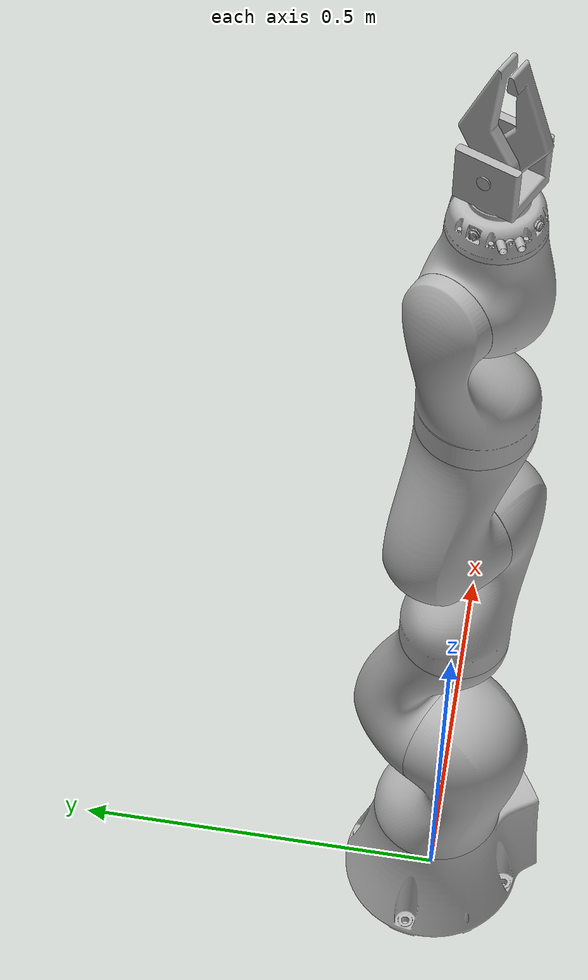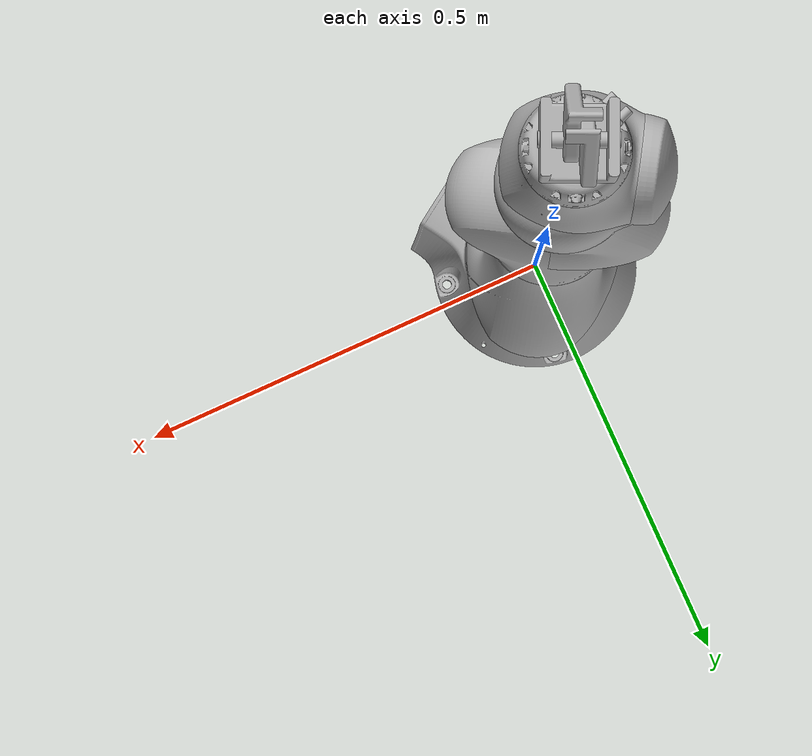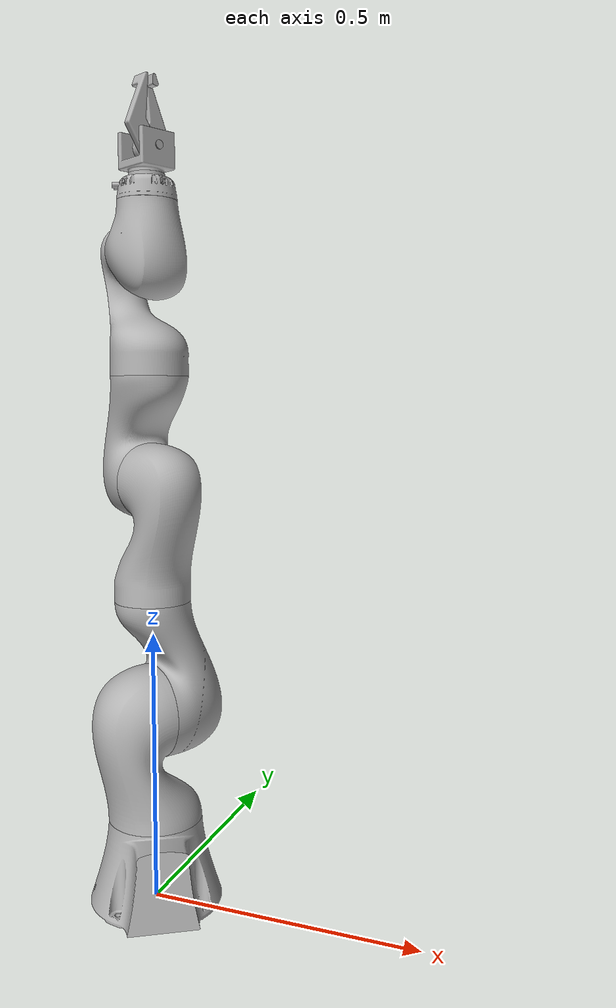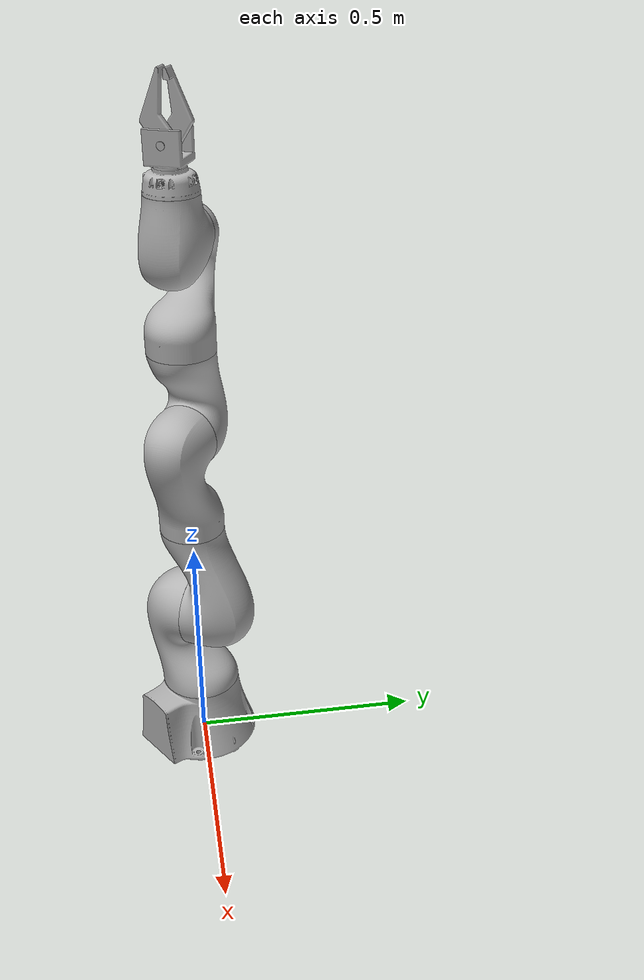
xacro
<?xml version="1.0" ?>
<robot name="iiwa_with_gripper" xmlns:xacro="http://www.ros.org/wiki/xacro">

  <xacro:include filename="$(find iiwa_with_gripper_description)/urdf/materials.xacro" />
  <xacro:include filename="$(find iiwa_with_gripper_description)/urdf/iiwa_with_gripper.trans" />
  <xacro:include filename="$(find iiwa_with_gripper_description)/urdf/iiwa_with_gripper.gazebo" />
  <link name="base_link">
    <inertial>
      <origin xyz="0.006965322374704147 -0.010760554559419669 0.06950676619175733" rpy="0 0 0"/>
      <mass value="5.476316363546272"/>
      <inertia ixx="0.02889" iyy="0.026199" izz="0.03348" ixy="0.003002" iyz="0.000568" ixz="-0.000368"/>
    </inertial>
    <visual>
      <origin xyz="0 0 0" rpy="0 0 0"/>
      <geometry>
        <mesh filename="package://iiwa_with_gripper_description/meshes/base_link.stl" scale="0.001 0.001 0.001"/>
      </geometry>
      <material name="silver"/>
    </visual>
    <collision>
      <origin xyz="0 0 0" rpy="0 0 0"/>
      <geometry>
        <mesh filename="package://iiwa_with_gripper_description/meshes/base_link.stl" scale="0.001 0.001 0.001"/>
      </geometry>
    </collision>
  </link>

  <link name="link1_1">
    <inertial>
      <origin xyz="-0.017943018054847274 -0.028638803355450302 0.1324037509841229" rpy="0 0 0"/>
      <mass value="4.1085979543107625"/>
      <inertia ixx="0.033064" iyy="0.033192" izz="0.012327" ixy="0.000132" iyz="0.004174" ixz="0.002615"/>
    </inertial>
    <visual>
      <origin xyz="5e-06 -1e-06 -0.1455" rpy="0 0 0"/>
      <geometry>
        <mesh filename="package://iiwa_with_gripper_description/meshes/link1_1.stl" scale="0.001 0.001 0.001"/>
      </geometry>
      <material name="silver"/>
    </visual>
    <collision>
      <origin xyz="5e-06 -1e-06 -0.1455" rpy="0 0 0"/>
      <geometry>
        <mesh filename="package://iiwa_with_gripper_description/meshes/link1_1.stl" scale="0.001 0.001 0.001"/>
      </geometry>
    </collision>
  </link>

  <link name="link2_1">
    <inertial>
      <origin xyz="0.027730554612854612 0.04397318850973551 0.05880227691865292" rpy="0 0 0"/>
      <mass value="3.9516031301561854"/>
      <inertia ixx="0.030525" iyy="0.030489" izz="0.011018" ixy="-8.9e-05" iyz="0.004124" ixz="0.002623"/>
    </inertial>
    <visual>
      <origin xyz="0.005314 0.008473 -0.358" rpy="0 0 0"/>
      <geometry>
        <mesh filename="package://iiwa_with_gripper_description/meshes/link2_1.stl" scale="0.001 0.001 0.001"/>
      </geometry>
      <material name="silver"/>
    </visual>
    <collision>
      <origin xyz="0.005314 0.008473 -0.358" rpy="0 0 0"/>
      <geometry>
        <mesh filename="package://iiwa_with_gripper_description/meshes/link2_1.stl" scale="0.001 0.001 0.001"/>
      </geometry>
    </collision>
  </link>

  <link name="link3_1">
    <inertial>
      <origin xyz="0.025051478850338406 -0.015696019116518925 0.13649751267814747" rpy="0 0 0"/>
      <mass value="3.1751522797798235"/>
      <inertia ixx="0.024168" iyy="0.024723" izz="0.007609" ixy="0.000572" iyz="0.002588" ixz="-0.00413"/>
    </inertial>
    <visual>
      <origin xyz="5e-06 -1e-06 -0.5525" rpy="0 0 0"/>
      <geometry>
        <mesh filename="package://iiwa_with_gripper_description/meshes/link3_1.stl" scale="0.001 0.001 0.001"/>
      </geometry>
      <material name="silver"/>
    </visual>
    <collision>
      <origin xyz="5e-06 -1e-06 -0.5525" rpy="0 0 0"/>
      <geometry>
        <mesh filename="package://iiwa_with_gripper_description/meshes/link3_1.stl" scale="0.001 0.001 0.001"/>
      </geometry>
    </collision>
  </link>

  <link name="link4_1">
    <inertial>
      <origin xyz="-0.03793408371324007 0.02376733466078998 0.0674187772182614" rpy="0 0 0"/>
      <mass value="2.7394199863147835"/>
      <inertia ixx="0.016623" iyy="0.016976" izz="0.006138" ixy="0.000364" iyz="0.001512" ixz="-0.002413"/>
    </inertial>
    <visual>
      <origin xyz="-0.008893 0.005574 -0.778" rpy="0 0 0"/>
      <geometry>
        <mesh filename="package://iiwa_with_gripper_description/meshes/link4_1.stl" scale="0.001 0.001 0.001"/>
      </geometry>
      <material name="silver"/>
    </visual>
    <collision>
      <origin xyz="-0.008893 0.005574 -0.778" rpy="0 0 0"/>
      <geometry>
        <mesh filename="package://iiwa_with_gripper_description/meshes/link4_1.stl" scale="0.001 0.001 0.001"/>
      </geometry>
    </collision>
  </link>

  <link name="link5_1">
    <inertial>
      <origin xyz="-0.018059916116281608 0.01145722636903425 0.08546976144259932" rpy="0 0 0"/>
      <mass value="1.6937518930824942"/>
      <inertia ixx="0.00909" iyy="0.009693" izz="0.004469" ixy="0.000619" iyz="-0.00164" ixz="0.002619"/>
    </inertial>
    <visual>
      <origin xyz="5e-06 -1e-06 -0.9525" rpy="0 0 0"/>
      <geometry>
        <mesh filename="package://iiwa_with_gripper_description/meshes/link5_1.stl" scale="0.001 0.001 0.001"/>
      </geometry>
      <material name="silver"/>
    </visual>
    <collision>
      <origin xyz="5e-06 -1e-06 -0.9525" rpy="0 0 0"/>
      <geometry>
        <mesh filename="package://iiwa_with_gripper_description/meshes/link5_1.stl" scale="0.001 0.001 0.001"/>
      </geometry>
    </collision>
  </link>

  <link name="link6_1">
    <inertial>
      <origin xyz="0.060197961567838416 -0.03771691538484422 0.0005655510153361742" rpy="0 0 0"/>
      <mass value="1.8087048119470246"/>
      <inertia ixx="0.004745" iyy="0.004836" izz="0.003567" ixy="9.4e-05" iyz="-0.00013" ixz="0.000207"/>
    </inertial>
    <visual>
      <origin xyz="0.059916 -0.037538 -1.178" rpy="0 0 0"/>
      <geometry>
        <mesh filename="package://iiwa_with_gripper_description/meshes/link6_1.stl" scale="0.001 0.001 0.001"/>
      </geometry>
      <material name="silver"/>
    </visual>
    <collision>
      <origin xyz="0.059916 -0.037538 -1.178" rpy="0 0 0"/>
      <geometry>
        <mesh filename="package://iiwa_with_gripper_description/meshes/link6_1.stl" scale="0.001 0.001 0.001"/>
      </geometry>
    </collision>
  </link>

  <link name="link7_1">
    <inertial>
      <origin xyz="-8.566076938427869e-05 -1.6648615005243726e-05 0.02726331885121902" rpy="0 0 0"/>
      <mass value="0.3112293546238468"/>
      <inertia ixx="0.000222" iyy="0.000223" izz="0.000342" ixy="-1e-06" iyz="0.0" ixz="0.0"/>
    </inertial>
    <visual>
      <origin xyz="5e-06 -1e-06 -1.2491" rpy="0 0 0"/>
      <geometry>
        <mesh filename="package://iiwa_with_gripper_description/meshes/link7_1.stl" scale="0.001 0.001 0.001"/>
      </geometry>
      <material name="silver"/>
    </visual>
    <collision>
      <origin xyz="5e-06 -1e-06 -1.2491" rpy="0 0 0"/>
      <geometry>
        <mesh filename="package://iiwa_with_gripper_description/meshes/link7_1.stl" scale="0.001 0.001 0.001"/>
      </geometry>
    </collision>
  </link>

  <link name="gripper_base_1">
    <inertial>
      <origin xyz="3.696945411962817e-07 -2.838668831751647e-07 0.025340357617523068" rpy="0 0 0"/>
      <mass value="0.14502326695982184"/>
      <inertia ixx="0.000113" iyy="0.000133" izz="0.000146" ixy="1.1e-05" iyz="-0.0" ixz="-0.0"/>
    </inertial>
    <visual>
      <origin xyz="5e-06 -1e-06 -1.304" rpy="0 0 0"/>
      <geometry>
        <mesh filename="package://iiwa_with_gripper_description/meshes/gripper_base_1.stl" scale="0.001 0.001 0.001"/>
      </geometry>
      <material name="silver"/>
    </visual>
    <collision>
      <origin xyz="5e-06 -1e-06 -1.304" rpy="0 0 0"/>
      <geometry>
        <mesh filename="package://iiwa_with_gripper_description/meshes/gripper_base_1.stl" scale="0.001 0.001 0.001"/>
      </geometry>
    </collision>
  </link>

  <link name="gripper_axis_1">
    <inertial>
      <origin xyz="-0.24653063030548122 -0.10569728386693174 -3.943512183468556e-13" rpy="0 0 0"/>
      <mass value="0.013076879420567428"/>
      <inertia ixx="1e-06" iyy="5e-06" izz="6e-06" ixy="2e-06" iyz="-0.0" ixz="-0.0"/>
    </inertial>
    <visual>
      <origin xyz="-0.246526 -0.105698 -1.346" rpy="0 0 0"/>
      <geometry>
        <mesh filename="package://iiwa_with_gripper_description/meshes/gripper_axis_1.stl" scale="0.001 0.001 0.001"/>
      </geometry>
      <material name="silver"/>
    </visual>
    <collision>
      <origin xyz="-0.246526 -0.105698 -1.346" rpy="0 0 0"/>
      <geometry>
        <mesh filename="package://iiwa_with_gripper_description/meshes/gripper_axis_1.stl" scale="0.001 0.001 0.001"/>
      </geometry>
    </collision>
  </link>

  <link name="gripper_finger1_1">
    <inertial>
      <origin xyz="-7.522186935857434e-05 -0.015319651825661716 0.04015659424597029" rpy="0 0 0"/>
      <mass value="0.056756377676662674"/>
      <inertia ixx="8.2e-05" iyy="7.6e-05" izz="1.2e-05" ixy="-3e-06" iyz="5e-06" ixz="5e-06"/>
    </inertial>
    <visual>
      <origin xyz="5e-06 -1e-06 -1.346" rpy="0 0 0"/>
      <geometry>
        <mesh filename="package://iiwa_with_gripper_description/meshes/gripper_finger1_1.stl" scale="0.001 0.001 0.001"/>
      </geometry>
      <material name="silver"/>
    </visual>
    <collision>
      <origin xyz="5e-06 -1e-06 -1.346" rpy="0 0 0"/>
      <geometry>
        <mesh filename="package://iiwa_with_gripper_description/meshes/gripper_finger1_1.stl" scale="0.001 0.001 0.001"/>
      </geometry>
    </collision>
  </link>

  <link name="grippe_finger2_1">
    <inertial>
      <origin xyz="-5.6963165186682546e-05 0.015028330719705208 0.040266373725741156" rpy="0 0 0"/>
      <mass value="0.0567564113627171"/>
      <inertia ixx="8.2e-05" iyy="7.6e-05" izz="1.1e-05" ixy="-3e-06" iyz="-4e-06" ixz="-5e-06"/>
    </inertial>
    <visual>
      <origin xyz="5e-06 -1e-06 -1.346" rpy="0 0 0"/>
      <geometry>
        <mesh filename="package://iiwa_with_gripper_description/meshes/grippe_finger2_1.stl" scale="0.001 0.001 0.001"/>
      </geometry>
      <material name="silver"/>
    </visual>
    <collision>
      <origin xyz="5e-06 -1e-06 -1.346" rpy="0 0 0"/>
      <geometry>
        <mesh filename="package://iiwa_with_gripper_description/meshes/grippe_finger2_1.stl" scale="0.001 0.001 0.001"/>
      </geometry>
    </collision>
  </link>

  <joint name="revolute1" type="continuous">
    <origin xyz="-5e-06 1e-06 0.1455" rpy="0 0 0"/>
    <parent link="base_link"/>
    <child link="link1_1"/>
    <axis xyz="0.0 0.0 1.0"/>
  </joint>

  <joint name="revolute2" type="continuous">
    <origin xyz="-0.005309 -0.008474 0.2125" rpy="0 0 0"/>
    <parent link="link1_1"/>
    <child link="link2_1"/>
    <axis xyz="0.530942 0.847408 0.0"/>
  </joint>

  <joint name="revolute3" type="continuous">
    <origin xyz="0.005309 0.008474 0.1945" rpy="0 0 0"/>
    <parent link="link2_1"/>
    <child link="link3_1"/>
    <axis xyz="0.0 0.0 1.0"/>
  </joint>

  <joint name="revolute4" type="continuous">
    <origin xyz="0.008898 -0.005575 0.2255" rpy="0 0 0"/>
    <parent link="link3_1"/>
    <child link="link4_1"/>
    <axis xyz="-0.847408 0.530942 0.0"/>
  </joint>

  <joint name="revolute5" type="continuous">
    <origin xyz="-0.008898 0.005575 0.1745" rpy="0 0 0"/>
    <parent link="link4_1"/>
    <child link="link5_1"/>
    <axis xyz="0.0 0.0 1.0"/>
  </joint>

  <joint name="revolute6" type="continuous">
    <origin xyz="-0.059911 0.037537 0.2255" rpy="0 0 0"/>
    <parent link="link5_1"/>
    <child link="link6_1"/>
    <axis xyz="0.847408 -0.530942 0.0"/>
  </joint>

  <joint name="revolute7" type="continuous">
    <origin xyz="0.059911 -0.037537 0.0711" rpy="0 0 0"/>
    <parent link="link6_1"/>
    <child link="link7_1"/>
    <axis xyz="0.0 0.0 1.0"/>
  </joint>

  <joint name="revolute8" type="continuous">
    <origin xyz="0.0 0.0 0.0549" rpy="0 0 0"/>
    <parent link="link7_1"/>
    <child link="gripper_base_1"/>
    <axis xyz="0.0 -0.0 -1.0"/>
  </joint>

  <joint name="rigid9" type="fixed">
    <origin xyz="0.246531 0.105697 0.042" rpy="0 0 0"/>
    <parent link="gripper_base_1"/>
    <child link="gripper_axis_1"/>
  </joint>

  <joint name="revolute10" type="revolute">
    <origin xyz="-0.246531 -0.105697 0.0" rpy="0 0 0"/>
    <parent link="gripper_axis_1"/>
    <child link="gripper_finger1_1"/>
    <axis xyz="-0.90946 0.415791 -0.0"/>
    <limit upper="0.0" lower="-0.523599" effort="100" velocity="100"/>
  </joint>

  <joint name="revolute11" type="revolute">
    <origin xyz="-0.246531 -0.105697 0.0" rpy="0 0 0"/>
    <parent link="gripper_axis_1"/>
    <child link="grippe_finger2_1"/>
    <axis xyz="-0.90946 0.415791 -0.0"/>
    <limit upper="0.523599" lower="0.0" effort="100" velocity="100"/>
  </joint>

</robot>

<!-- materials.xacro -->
<robot name="iiwa_with_gripper" xmlns:xacro="http://www.ros.org/wiki/xacro" >

<material name="silver">
  <color rgba="0.700 0.700 0.700 1.000"/>
</material>

</robot>

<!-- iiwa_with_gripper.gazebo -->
<robot name="iiwa_with_gripper" xmlns:xacro="http://www.ros.org/wiki/xacro" >

<xacro:property name="body_color" value="Gazebo/Silver" />

<gazebo>
  <plugin name="control" filename="libgazebo_ros_control.so"/>
</gazebo>
<gazebo reference="base_link">
  <material>${body_color}</material>
  <mu1>0.2</mu1>
  <mu2>0.2</mu2>
  <selfCollide>true</selfCollide>
  <gravity>true</gravity>
</gazebo>

<gazebo reference="link1_1">
  <material>${body_color}</material>
  <mu1>0.2</mu1>
  <mu2>0.2</mu2>
  <selfCollide>true</selfCollide>
</gazebo>

<gazebo reference="link2_1">
  <material>${body_color}</material>
  <mu1>0.2</mu1>
  <mu2>0.2</mu2>
  <selfCollide>true</selfCollide>
</gazebo>

<gazebo reference="link3_1">
  <material>${body_color}</material>
  <mu1>0.2</mu1>
  <mu2>0.2</mu2>
  <selfCollide>true</selfCollide>
</gazebo>

<gazebo reference="link4_1">
  <material>${body_color}</material>
  <mu1>0.2</mu1>
  <mu2>0.2</mu2>
  <selfCollide>true</selfCollide>
</gazebo>

<gazebo reference="link5_1">
  <material>${body_color}</material>
  <mu1>0.2</mu1>
  <mu2>0.2</mu2>
  <selfCollide>true</selfCollide>
</gazebo>

<gazebo reference="link6_1">
  <material>${body_color}</material>
  <mu1>0.2</mu1>
  <mu2>0.2</mu2>
  <selfCollide>true</selfCollide>
</gazebo>

<gazebo reference="link7_1">
  <material>${body_color}</material>
  <mu1>0.2</mu1>
  <mu2>0.2</mu2>
  <selfCollide>true</selfCollide>
</gazebo>

<gazebo reference="gripper_base_1">
  <material>${body_color}</material>
  <mu1>0.2</mu1>
  <mu2>0.2</mu2>
  <selfCollide>true</selfCollide>
</gazebo>

<gazebo reference="gripper_axis_1">
  <material>${body_color}</material>
  <mu1>0.2</mu1>
  <mu2>0.2</mu2>
  <selfCollide>true</selfCollide>
</gazebo>

<gazebo reference="gripper_finger1_1">
  <material>${body_color}</material>
  <mu1>0.2</mu1>
  <mu2>0.2</mu2>
  <selfCollide>true</selfCollide>
</gazebo>

<gazebo reference="grippe_finger2_1">
  <material>${body_color}</material>
  <mu1>0.2</mu1>
  <mu2>0.2</mu2>
  <selfCollide>true</selfCollide>
</gazebo>

</robot>
